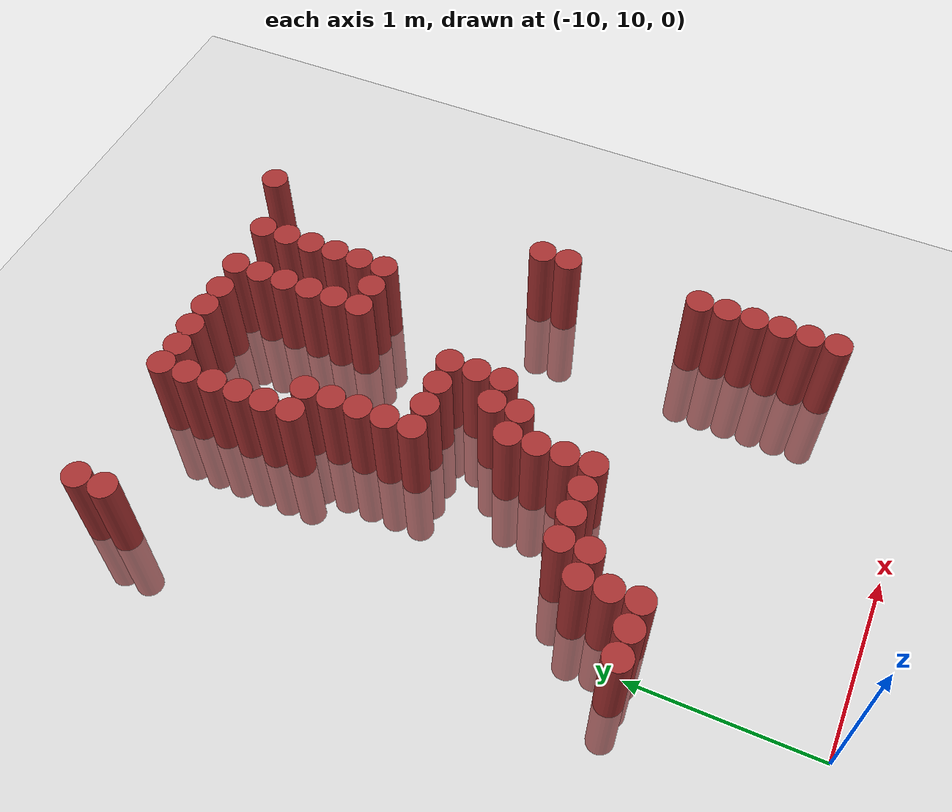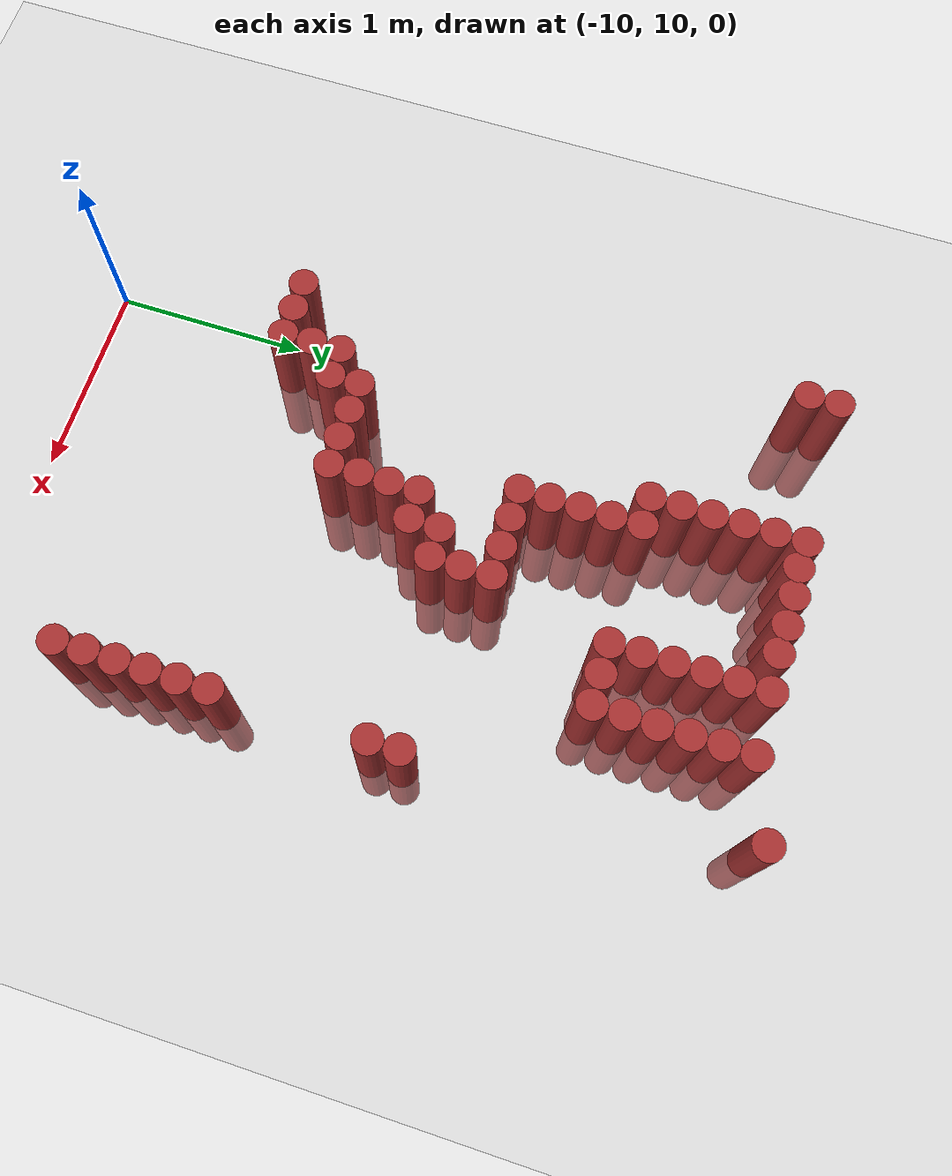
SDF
<sdf version="1.6">
 <world name="default">
  <model name="ground_plane">
   <static>1</static>
   <link name="link">
    <collision name="collision">
     <geometry><plane><normal>0 0 1</normal><size>100 100</size></plane></geometry>
     <surface><friction><ode><mu>100</mu><mu2>50</mu2></ode></friction></surface>
    </collision>
    <visual name="visual">
     <cast_shadows>0</cast_shadows>
     <geometry><plane><normal>0 0 1</normal><size>100 100</size></plane></geometry>
     <material>
      <script><uri>file://media/materials/scripts/gazebo.material</uri><name>Gazebo/Grey</name></script>
     </material>
    </visual>
   </link>
  </model>
  <model name="unit_cylinder_395">
   <static>1</static>
   <pose>-10.275 13.575 0 0 -0 0</pose>
   <link name="link">
    <inertial>
     <mass>1</mass>
     <inertia><ixx>0.145833</ixx><ixy>0</ixy><ixz>0</ixz><iyy>0.145833</iyy><iyz>0</iyz><izz>0.125</izz></inertia>
    </inertial>
    <collision name="collision">
     <geometry><cylinder><radius>0.075</radius><length>1</length></cylinder></geometry>
    </collision>
    <visual name="visual">
     <geometry><cylinder><radius>0.075</radius><length>1</length></cylinder></geometry>
     <material><ambient>0.648 0.192 0.192 1</ambient><diffuse>0.648 0.192 0.192 1</diffuse></material>
     <material>
      <script><name>Gazebo/Grey</name><uri>file://media/materials/scripts/gazebo.material</uri></script>
     </material>
    </visual>
   </link>
  </model>
  <model name="unit_cylinder_396">
   <static>1</static>
   <pose>-10.275 13.725 0 0 -0 0</pose>
   <link name="link">
    <inertial>
     <mass>1</mass>
     <inertia><ixx>0.145833</ixx><ixy>0</ixy><ixz>0</ixz><iyy>0.145833</iyy><iyz>0</iyz><izz>0.125</izz></inertia>
    </inertial>
    <collision name="collision">
     <geometry><cylinder><radius>0.075</radius><length>1</length></cylinder></geometry>
    </collision>
    <visual name="visual">
     <geometry><cylinder><radius>0.075</radius><length>1</length></cylinder></geometry>
     <material><ambient>0.648 0.192 0.192 1</ambient><diffuse>0.648 0.192 0.192 1</diffuse></material>
     <material>
      <script><name>Gazebo/Grey</name><uri>file://media/materials/scripts/gazebo.material</uri></script>
     </material>
    </visual>
   </link>
  </model>
  <model name="unit_cylinder_412">
   <static>1</static>
   <pose>-10.125 11.025 0 0 -0 0</pose>
   <link name="link">
    <inertial>
     <mass>1</mass>
     <inertia><ixx>0.145833</ixx><ixy>0</ixy><ixz>0</ixz><iyy>0.145833</iyy><iyz>0</iyz><izz>0.125</izz></inertia>
    </inertial>
    <collision name="collision">
     <geometry><cylinder><radius>0.075</radius><length>1</length></cylinder></geometry>
    </collision>
    <visual name="visual">
     <geometry><cylinder><radius>0.075</radius><length>1</length></cylinder></geometry>
     <material><ambient>0.648 0.192 0.192 1</ambient><diffuse>0.648 0.192 0.192 1</diffuse></material>
     <material>
      <script><name>Gazebo/Grey</name><uri>file://media/materials/scripts/gazebo.material</uri></script>
     </material>
    </visual>
   </link>
  </model>
  <model name="unit_cylinder_424">
   <static>1</static>
   <pose>-9.975 11.025 0 0 -0 0</pose>
   <link name="link">
    <inertial>
     <mass>1</mass>
     <inertia><ixx>0.145833</ixx><ixy>0</ixy><ixz>0</ixz><iyy>0.145833</iyy><iyz>0</iyz><izz>0.125</izz></inertia>
    </inertial>
    <collision name="collision">
     <geometry><cylinder><radius>0.075</radius><length>1</length></cylinder></geometry>
    </collision>
    <visual name="visual">
     <geometry><cylinder><radius>0.075</radius><length>1</length></cylinder></geometry>
     <material><ambient>0.648 0.192 0.192 1</ambient><diffuse>0.648 0.192 0.192 1</diffuse></material>
     <material>
      <script><name>Gazebo/Grey</name><uri>file://media/materials/scripts/gazebo.material</uri></script>
     </material>
    </visual>
   </link>
  </model>
  <model name="unit_cylinder_439">
   <static>1</static>
   <pose>-9.825 11.025 0 0 -0 0</pose>
   <link name="link">
    <inertial>
     <mass>1</mass>
     <inertia><ixx>0.145833</ixx><ixy>0</ixy><ixz>0</ixz><iyy>0.145833</iyy><iyz>0</iyz><izz>0.125</izz></inertia>
    </inertial>
    <collision name="collision">
     <geometry><cylinder><radius>0.075</radius><length>1</length></cylinder></geometry>
    </collision>
    <visual name="visual">
     <geometry><cylinder><radius>0.075</radius><length>1</length></cylinder></geometry>
     <material><ambient>0.648 0.192 0.192 1</ambient><diffuse>0.648 0.192 0.192 1</diffuse></material>
     <material>
      <script><name>Gazebo/Grey</name><uri>file://media/materials/scripts/gazebo.material</uri></script>
     </material>
    </visual>
   </link>
  </model>
  <model name="unit_cylinder_440">
   <static>1</static>
   <pose>-9.825 11.175 0 0 -0 0</pose>
   <link name="link">
    <inertial>
     <mass>1</mass>
     <inertia><ixx>0.145833</ixx><ixy>0</ixy><ixz>0</ixz><iyy>0.145833</iyy><iyz>0</iyz><izz>0.125</izz></inertia>
    </inertial>
    <collision name="collision">
     <geometry><cylinder><radius>0.075</radius><length>1</length></cylinder></geometry>
    </collision>
    <visual name="visual">
     <geometry><cylinder><radius>0.075</radius><length>1</length></cylinder></geometry>
     <material><ambient>0.648 0.192 0.192 1</ambient><diffuse>0.648 0.192 0.192 1</diffuse></material>
     <material>
      <script><name>Gazebo/Grey</name><uri>file://media/materials/scripts/gazebo.material</uri></script>
     </material>
    </visual>
   </link>
  </model>
  <model name="unit_cylinder_441">
   <static>1</static>
   <pose>-9.825 11.325 0 0 -0 0</pose>
   <link name="link">
    <inertial>
     <mass>1</mass>
     <inertia><ixx>0.145833</ixx><ixy>0</ixy><ixz>0</ixz><iyy>0.145833</iyy><iyz>0</iyz><izz>0.125</izz></inertia>
    </inertial>
    <collision name="collision">
     <geometry><cylinder><radius>0.075</radius><length>1</length></cylinder></geometry>
    </collision>
    <visual name="visual">
     <geometry><cylinder><radius>0.075</radius><length>1</length></cylinder></geometry>
     <material><ambient>0.648 0.192 0.192 1</ambient><diffuse>0.648 0.192 0.192 1</diffuse></material>
     <material>
      <script><name>Gazebo/Grey</name><uri>file://media/materials/scripts/gazebo.material</uri></script>
     </material>
    </visual>
   </link>
  </model>
  <model name="unit_cylinder_466">
   <static>1</static>
   <pose>-9.675 11.325 0 0 -0 0</pose>
   <link name="link">
    <inertial>
     <mass>1</mass>
     <inertia><ixx>0.145833</ixx><ixy>0</ixy><ixz>0</ixz><iyy>0.145833</iyy><iyz>0</iyz><izz>0.125</izz></inertia>
    </inertial>
    <collision name="collision">
     <geometry><cylinder><radius>0.075</radius><length>1</length></cylinder></geometry>
    </collision>
    <visual name="visual">
     <geometry><cylinder><radius>0.075</radius><length>1</length></cylinder></geometry>
     <material><ambient>0.648 0.192 0.192 1</ambient><diffuse>0.648 0.192 0.192 1</diffuse></material>
     <material>
      <script><name>Gazebo/Grey</name><uri>file://media/materials/scripts/gazebo.material</uri></script>
     </material>
    </visual>
   </link>
  </model>
  <model name="unit_cylinder_467">
   <static>1</static>
   <pose>-9.675 11.475 0 0 -0 0</pose>
   <link name="link">
    <inertial>
     <mass>1</mass>
     <inertia><ixx>0.145833</ixx><ixy>0</ixy><ixz>0</ixz><iyy>0.145833</iyy><iyz>0</iyz><izz>0.125</izz></inertia>
    </inertial>
    <collision name="collision">
     <geometry><cylinder><radius>0.075</radius><length>1</length></cylinder></geometry>
    </collision>
    <visual name="visual">
     <geometry><cylinder><radius>0.075</radius><length>1</length></cylinder></geometry>
     <material><ambient>0.648 0.192 0.192 1</ambient><diffuse>0.648 0.192 0.192 1</diffuse></material>
     <material>
      <script><name>Gazebo/Grey</name><uri>file://media/materials/scripts/gazebo.material</uri></script>
     </material>
    </visual>
   </link>
  </model>
  <model name="unit_cylinder_477">
   <static>1</static>
   <pose>-9.525 11.475 0 0 -0 0</pose>
   <link name="link">
    <inertial>
     <mass>1</mass>
     <inertia><ixx>0.145833</ixx><ixy>0</ixy><ixz>0</ixz><iyy>0.145833</iyy><iyz>0</iyz><izz>0.125</izz></inertia>
    </inertial>
    <collision name="collision">
     <geometry><cylinder><radius>0.075</radius><length>1</length></cylinder></geometry>
    </collision>
    <visual name="visual">
     <geometry><cylinder><radius>0.075</radius><length>1</length></cylinder></geometry>
     <material><ambient>0.648 0.192 0.192 1</ambient><diffuse>0.648 0.192 0.192 1</diffuse></material>
     <material>
      <script><name>Gazebo/Grey</name><uri>file://media/materials/scripts/gazebo.material</uri></script>
     </material>
    </visual>
   </link>
  </model>
  <model name="unit_cylinder_478">
   <static>1</static>
   <pose>-9.525 12.975 0 0 -0 0</pose>
   <link name="link">
    <inertial>
     <mass>1</mass>
     <inertia><ixx>0.145833</ixx><ixy>0</ixy><ixz>0</ixz><iyy>0.145833</iyy><iyz>0</iyz><izz>0.125</izz></inertia>
    </inertial>
    <collision name="collision">
     <geometry><cylinder><radius>0.075</radius><length>1</length></cylinder></geometry>
    </collision>
    <visual name="visual">
     <geometry><cylinder><radius>0.075</radius><length>1</length></cylinder></geometry>
     <material><ambient>0.648 0.192 0.192 1</ambient><diffuse>0.648 0.192 0.192 1</diffuse></material>
     <material>
      <script><name>Gazebo/Grey</name><uri>file://media/materials/scripts/gazebo.material</uri></script>
     </material>
    </visual>
   </link>
  </model>
  <model name="unit_cylinder_479">
   <static>1</static>
   <pose>-9.525 13.125 0 0 -0 0</pose>
   <link name="link">
    <inertial>
     <mass>1</mass>
     <inertia><ixx>0.145833</ixx><ixy>0</ixy><ixz>0</ixz><iyy>0.145833</iyy><iyz>0</iyz><izz>0.125</izz></inertia>
    </inertial>
    <collision name="collision">
     <geometry><cylinder><radius>0.075</radius><length>1</length></cylinder></geometry>
    </collision>
    <visual name="visual">
     <geometry><cylinder><radius>0.075</radius><length>1</length></cylinder></geometry>
     <material><ambient>0.648 0.192 0.192 1</ambient><diffuse>0.648 0.192 0.192 1</diffuse></material>
     <material>
      <script><name>Gazebo/Grey</name><uri>file://media/materials/scripts/gazebo.material</uri></script>
     </material>
    </visual>
   </link>
  </model>
  <model name="unit_cylinder_480">
   <static>1</static>
   <pose>-9.525 13.275 0 0 -0 0</pose>
   <link name="link">
    <inertial>
     <mass>1</mass>
     <inertia><ixx>0.145833</ixx><ixy>0</ixy><ixz>0</ixz><iyy>0.145833</iyy><iyz>0</iyz><izz>0.125</izz></inertia>
    </inertial>
    <collision name="collision">
     <geometry><cylinder><radius>0.075</radius><length>1</length></cylinder></geometry>
    </collision>
    <visual name="visual">
     <geometry><cylinder><radius>0.075</radius><length>1</length></cylinder></geometry>
     <material><ambient>0.648 0.192 0.192 1</ambient><diffuse>0.648 0.192 0.192 1</diffuse></material>
     <material>
      <script><name>Gazebo/Grey</name><uri>file://media/materials/scripts/gazebo.material</uri></script>
     </material>
    </visual>
   </link>
  </model>
  <model name="unit_cylinder_481">
   <static>1</static>
   <pose>-9.525 13.425 0 0 -0 0</pose>
   <link name="link">
    <inertial>
     <mass>1</mass>
     <inertia><ixx>0.145833</ixx><ixy>0</ixy><ixz>0</ixz><iyy>0.145833</iyy><iyz>0</iyz><izz>0.125</izz></inertia>
    </inertial>
    <collision name="collision">
     <geometry><cylinder><radius>0.075</radius><length>1</length></cylinder></geometry>
    </collision>
    <visual name="visual">
     <geometry><cylinder><radius>0.075</radius><length>1</length></cylinder></geometry>
     <material><ambient>0.648 0.192 0.192 1</ambient><diffuse>0.648 0.192 0.192 1</diffuse></material>
     <material>
      <script><name>Gazebo/Grey</name><uri>file://media/materials/scripts/gazebo.material</uri></script>
     </material>
    </visual>
   </link>
  </model>
  <model name="unit_cylinder_482">
   <static>1</static>
   <pose>-9.525 13.575 0 0 -0 0</pose>
   <link name="link">
    <inertial>
     <mass>1</mass>
     <inertia><ixx>0.145833</ixx><ixy>0</ixy><ixz>0</ixz><iyy>0.145833</iyy><iyz>0</iyz><izz>0.125</izz></inertia>
    </inertial>
    <collision name="collision">
     <geometry><cylinder><radius>0.075</radius><length>1</length></cylinder></geometry>
    </collision>
    <visual name="visual">
     <geometry><cylinder><radius>0.075</radius><length>1</length></cylinder></geometry>
     <material><ambient>0.648 0.192 0.192 1</ambient><diffuse>0.648 0.192 0.192 1</diffuse></material>
     <material>
      <script><name>Gazebo/Grey</name><uri>file://media/materials/scripts/gazebo.material</uri></script>
     </material>
    </visual>
   </link>
  </model>
  <model name="unit_cylinder_483">
   <static>1</static>
   <pose>-9.525 13.725 0 0 -0 0</pose>
   <link name="link">
    <inertial>
     <mass>1</mass>
     <inertia><ixx>0.145833</ixx><ixy>0</ixy><ixz>0</ixz><iyy>0.145833</iyy><iyz>0</iyz><izz>0.125</izz></inertia>
    </inertial>
    <collision name="collision">
     <geometry><cylinder><radius>0.075</radius><length>1</length></cylinder></geometry>
    </collision>
    <visual name="visual">
     <geometry><cylinder><radius>0.075</radius><length>1</length></cylinder></geometry>
     <material><ambient>0.648 0.192 0.192 1</ambient><diffuse>0.648 0.192 0.192 1</diffuse></material>
     <material>
      <script><name>Gazebo/Grey</name><uri>file://media/materials/scripts/gazebo.material</uri></script>
     </material>
    </visual>
   </link>
  </model>
  <model name="unit_cylinder_494">
   <static>1</static>
   <pose>-9.375 11.475 0 0 -0 0</pose>
   <link name="link">
    <inertial>
     <mass>1</mass>
     <inertia><ixx>0.145833</ixx><ixy>0</ixy><ixz>0</ixz><iyy>0.145833</iyy><iyz>0</iyz><izz>0.125</izz></inertia>
    </inertial>
    <collision name="collision">
     <geometry><cylinder><radius>0.075</radius><length>1</length></cylinder></geometry>
    </collision>
    <visual name="visual">
     <geometry><cylinder><radius>0.075</radius><length>1</length></cylinder></geometry>
     <material><ambient>0.648 0.192 0.192 1</ambient><diffuse>0.648 0.192 0.192 1</diffuse></material>
     <material>
      <script><name>Gazebo/Grey</name><uri>file://media/materials/scripts/gazebo.material</uri></script>
     </material>
    </visual>
   </link>
  </model>
  <model name="unit_cylinder_495">
   <static>1</static>
   <pose>-9.375 12.375 0 0 -0 0</pose>
   <link name="link">
    <inertial>
     <mass>1</mass>
     <inertia><ixx>0.145833</ixx><ixy>0</ixy><ixz>0</ixz><iyy>0.145833</iyy><iyz>0</iyz><izz>0.125</izz></inertia>
    </inertial>
    <collision name="collision">
     <geometry><cylinder><radius>0.075</radius><length>1</length></cylinder></geometry>
    </collision>
    <visual name="visual">
     <geometry><cylinder><radius>0.075</radius><length>1</length></cylinder></geometry>
     <material><ambient>0.648 0.192 0.192 1</ambient><diffuse>0.648 0.192 0.192 1</diffuse></material>
     <material>
      <script><name>Gazebo/Grey</name><uri>file://media/materials/scripts/gazebo.material</uri></script>
     </material>
    </visual>
   </link>
  </model>
  <model name="unit_cylinder_496">
   <static>1</static>
   <pose>-9.375 12.525 0 0 -0 0</pose>
   <link name="link">
    <inertial>
     <mass>1</mass>
     <inertia><ixx>0.145833</ixx><ixy>0</ixy><ixz>0</ixz><iyy>0.145833</iyy><iyz>0</iyz><izz>0.125</izz></inertia>
    </inertial>
    <collision name="collision">
     <geometry><cylinder><radius>0.075</radius><length>1</length></cylinder></geometry>
    </collision>
    <visual name="visual">
     <geometry><cylinder><radius>0.075</radius><length>1</length></cylinder></geometry>
     <material><ambient>0.648 0.192 0.192 1</ambient><diffuse>0.648 0.192 0.192 1</diffuse></material>
     <material>
      <script><name>Gazebo/Grey</name><uri>file://media/materials/scripts/gazebo.material</uri></script>
     </material>
    </visual>
   </link>
  </model>
  <model name="unit_cylinder_497">
   <static>1</static>
   <pose>-9.375 12.675 0 0 -0 0</pose>
   <link name="link">
    <inertial>
     <mass>1</mass>
     <inertia><ixx>0.145833</ixx><ixy>0</ixy><ixz>0</ixz><iyy>0.145833</iyy><iyz>0</iyz><izz>0.125</izz></inertia>
    </inertial>
    <collision name="collision">
     <geometry><cylinder><radius>0.075</radius><length>1</length></cylinder></geometry>
    </collision>
    <visual name="visual">
     <geometry><cylinder><radius>0.075</radius><length>1</length></cylinder></geometry>
     <material><ambient>0.648 0.192 0.192 1</ambient><diffuse>0.648 0.192 0.192 1</diffuse></material>
     <material>
      <script><name>Gazebo/Grey</name><uri>file://media/materials/scripts/gazebo.material</uri></script>
     </material>
    </visual>
   </link>
  </model>
  <model name="unit_cylinder_498">
   <static>1</static>
   <pose>-9.375 12.825 0 0 -0 0</pose>
   <link name="link">
    <inertial>
     <mass>1</mass>
     <inertia><ixx>0.145833</ixx><ixy>0</ixy><ixz>0</ixz><iyy>0.145833</iyy><iyz>0</iyz><izz>0.125</izz></inertia>
    </inertial>
    <collision name="collision">
     <geometry><cylinder><radius>0.075</radius><length>1</length></cylinder></geometry>
    </collision>
    <visual name="visual">
     <geometry><cylinder><radius>0.075</radius><length>1</length></cylinder></geometry>
     <material><ambient>0.648 0.192 0.192 1</ambient><diffuse>0.648 0.192 0.192 1</diffuse></material>
     <material>
      <script><name>Gazebo/Grey</name><uri>file://media/materials/scripts/gazebo.material</uri></script>
     </material>
    </visual>
   </link>
  </model>
  <model name="unit_cylinder_499">
   <static>1</static>
   <pose>-9.375 12.975 0 0 -0 0</pose>
   <link name="link">
    <inertial>
     <mass>1</mass>
     <inertia><ixx>0.145833</ixx><ixy>0</ixy><ixz>0</ixz><iyy>0.145833</iyy><iyz>0</iyz><izz>0.125</izz></inertia>
    </inertial>
    <collision name="collision">
     <geometry><cylinder><radius>0.075</radius><length>1</length></cylinder></geometry>
    </collision>
    <visual name="visual">
     <geometry><cylinder><radius>0.075</radius><length>1</length></cylinder></geometry>
     <material><ambient>0.648 0.192 0.192 1</ambient><diffuse>0.648 0.192 0.192 1</diffuse></material>
     <material>
      <script><name>Gazebo/Grey</name><uri>file://media/materials/scripts/gazebo.material</uri></script>
     </material>
    </visual>
   </link>
  </model>
  <model name="unit_cylinder_508">
   <static>1</static>
   <pose>-9.225 11.475 0 0 -0 0</pose>
   <link name="link">
    <inertial>
     <mass>1</mass>
     <inertia><ixx>0.145833</ixx><ixy>0</ixy><ixz>0</ixz><iyy>0.145833</iyy><iyz>0</iyz><izz>0.125</izz></inertia>
    </inertial>
    <collision name="collision">
     <geometry><cylinder><radius>0.075</radius><length>1</length></cylinder></geometry>
    </collision>
    <visual name="visual">
     <geometry><cylinder><radius>0.075</radius><length>1</length></cylinder></geometry>
     <material><ambient>0.648 0.192 0.192 1</ambient><diffuse>0.648 0.192 0.192 1</diffuse></material>
     <material>
      <script><name>Gazebo/Grey</name><uri>file://media/materials/scripts/gazebo.material</uri></script>
     </material>
    </visual>
   </link>
  </model>
  <model name="unit_cylinder_509">
   <static>1</static>
   <pose>-9.225 11.625 0 0 -0 0</pose>
   <link name="link">
    <inertial>
     <mass>1</mass>
     <inertia><ixx>0.145833</ixx><ixy>0</ixy><ixz>0</ixz><iyy>0.145833</iyy><iyz>0</iyz><izz>0.125</izz></inertia>
    </inertial>
    <collision name="collision">
     <geometry><cylinder><radius>0.075</radius><length>1</length></cylinder></geometry>
    </collision>
    <visual name="visual">
     <geometry><cylinder><radius>0.075</radius><length>1</length></cylinder></geometry>
     <material><ambient>0.648 0.192 0.192 1</ambient><diffuse>0.648 0.192 0.192 1</diffuse></material>
     <material>
      <script><name>Gazebo/Grey</name><uri>file://media/materials/scripts/gazebo.material</uri></script>
     </material>
    </visual>
   </link>
  </model>
  <model name="unit_cylinder_510">
   <static>1</static>
   <pose>-9.225 11.775 0 0 -0 0</pose>
   <link name="link">
    <inertial>
     <mass>1</mass>
     <inertia><ixx>0.145833</ixx><ixy>0</ixy><ixz>0</ixz><iyy>0.145833</iyy><iyz>0</iyz><izz>0.125</izz></inertia>
    </inertial>
    <collision name="collision">
     <geometry><cylinder><radius>0.075</radius><length>1</length></cylinder></geometry>
    </collision>
    <visual name="visual">
     <geometry><cylinder><radius>0.075</radius><length>1</length></cylinder></geometry>
     <material><ambient>0.648 0.192 0.192 1</ambient><diffuse>0.648 0.192 0.192 1</diffuse></material>
     <material>
      <script><name>Gazebo/Grey</name><uri>file://media/materials/scripts/gazebo.material</uri></script>
     </material>
    </visual>
   </link>
  </model>
  <model name="unit_cylinder_511">
   <static>1</static>
   <pose>-9.225 11.925 0 0 -0 0</pose>
   <link name="link">
    <inertial>
     <mass>1</mass>
     <inertia><ixx>0.145833</ixx><ixy>0</ixy><ixz>0</ixz><iyy>0.145833</iyy><iyz>0</iyz><izz>0.125</izz></inertia>
    </inertial>
    <collision name="collision">
     <geometry><cylinder><radius>0.075</radius><length>1</length></cylinder></geometry>
    </collision>
    <visual name="visual">
     <geometry><cylinder><radius>0.075</radius><length>1</length></cylinder></geometry>
     <material><ambient>0.648 0.192 0.192 1</ambient><diffuse>0.648 0.192 0.192 1</diffuse></material>
     <material>
      <script><name>Gazebo/Grey</name><uri>file://media/materials/scripts/gazebo.material</uri></script>
     </material>
    </visual>
   </link>
  </model>
  <model name="unit_cylinder_512">
   <static>1</static>
   <pose>-9.225 12.375 0 0 -0 0</pose>
   <link name="link">
    <inertial>
     <mass>1</mass>
     <inertia><ixx>0.145833</ixx><ixy>0</ixy><ixz>0</ixz><iyy>0.145833</iyy><iyz>0</iyz><izz>0.125</izz></inertia>
    </inertial>
    <collision name="collision">
     <geometry><cylinder><radius>0.075</radius><length>1</length></cylinder></geometry>
    </collision>
    <visual name="visual">
     <geometry><cylinder><radius>0.075</radius><length>1</length></cylinder></geometry>
     <material><ambient>0.648 0.192 0.192 1</ambient><diffuse>0.648 0.192 0.192 1</diffuse></material>
     <material>
      <script><name>Gazebo/Grey</name><uri>file://media/materials/scripts/gazebo.material</uri></script>
     </material>
    </visual>
   </link>
  </model>
  <model name="unit_cylinder_518">
   <static>1</static>
   <pose>-9.075 11.925 0 0 -0 0</pose>
   <link name="link">
    <inertial>
     <mass>1</mass>
     <inertia><ixx>0.145833</ixx><ixy>0</ixy><ixz>0</ixz><iyy>0.145833</iyy><iyz>0</iyz><izz>0.125</izz></inertia>
    </inertial>
    <collision name="collision">
     <geometry><cylinder><radius>0.075</radius><length>1</length></cylinder></geometry>
    </collision>
    <visual name="visual">
     <geometry><cylinder><radius>0.075</radius><length>1</length></cylinder></geometry>
     <material><ambient>0.648 0.192 0.192 1</ambient><diffuse>0.648 0.192 0.192 1</diffuse></material>
     <material>
      <script><name>Gazebo/Grey</name><uri>file://media/materials/scripts/gazebo.material</uri></script>
     </material>
    </visual>
   </link>
  </model>
  <model name="unit_cylinder_519">
   <static>1</static>
   <pose>-9.075 12.075 0 0 -0 0</pose>
   <link name="link">
    <inertial>
     <mass>1</mass>
     <inertia><ixx>0.145833</ixx><ixy>0</ixy><ixz>0</ixz><iyy>0.145833</iyy><iyz>0</iyz><izz>0.125</izz></inertia>
    </inertial>
    <collision name="collision">
     <geometry><cylinder><radius>0.075</radius><length>1</length></cylinder></geometry>
    </collision>
    <visual name="visual">
     <geometry><cylinder><radius>0.075</radius><length>1</length></cylinder></geometry>
     <material><ambient>0.648 0.192 0.192 1</ambient><diffuse>0.648 0.192 0.192 1</diffuse></material>
     <material>
      <script><name>Gazebo/Grey</name><uri>file://media/materials/scripts/gazebo.material</uri></script>
     </material>
    </visual>
   </link>
  </model>
  <model name="unit_cylinder_520">
   <static>1</static>
   <pose>-9.075 12.375 0 0 -0 0</pose>
   <link name="link">
    <inertial>
     <mass>1</mass>
     <inertia><ixx>0.145833</ixx><ixy>0</ixy><ixz>0</ixz><iyy>0.145833</iyy><iyz>0</iyz><izz>0.125</izz></inertia>
    </inertial>
    <collision name="collision">
     <geometry><cylinder><radius>0.075</radius><length>1</length></cylinder></geometry>
    </collision>
    <visual name="visual">
     <geometry><cylinder><radius>0.075</radius><length>1</length></cylinder></geometry>
     <material><ambient>0.648 0.192 0.192 1</ambient><diffuse>0.648 0.192 0.192 1</diffuse></material>
     <material>
      <script><name>Gazebo/Grey</name><uri>file://media/materials/scripts/gazebo.material</uri></script>
     </material>
    </visual>
   </link>
  </model>
  <model name="unit_cylinder_525">
   <static>1</static>
   <pose>-8.925 12.075 0 0 -0 0</pose>
   <link name="link">
    <inertial>
     <mass>1</mass>
     <inertia><ixx>0.145833</ixx><ixy>0</ixy><ixz>0</ixz><iyy>0.145833</iyy><iyz>0</iyz><izz>0.125</izz></inertia>
    </inertial>
    <collision name="collision">
     <geometry><cylinder><radius>0.075</radius><length>1</length></cylinder></geometry>
    </collision>
    <visual name="visual">
     <geometry><cylinder><radius>0.075</radius><length>1</length></cylinder></geometry>
     <material><ambient>0.648 0.192 0.192 1</ambient><diffuse>0.648 0.192 0.192 1</diffuse></material>
     <material>
      <script><name>Gazebo/Grey</name><uri>file://media/materials/scripts/gazebo.material</uri></script>
     </material>
    </visual>
   </link>
  </model>
  <model name="unit_cylinder_526">
   <static>1</static>
   <pose>-8.925 12.225 0 0 -0 0</pose>
   <link name="link">
    <inertial>
     <mass>1</mass>
     <inertia><ixx>0.145833</ixx><ixy>0</ixy><ixz>0</ixz><iyy>0.145833</iyy><iyz>0</iyz><izz>0.125</izz></inertia>
    </inertial>
    <collision name="collision">
     <geometry><cylinder><radius>0.075</radius><length>1</length></cylinder></geometry>
    </collision>
    <visual name="visual">
     <geometry><cylinder><radius>0.075</radius><length>1</length></cylinder></geometry>
     <material><ambient>0.648 0.192 0.192 1</ambient><diffuse>0.648 0.192 0.192 1</diffuse></material>
     <material>
      <script><name>Gazebo/Grey</name><uri>file://media/materials/scripts/gazebo.material</uri></script>
     </material>
    </visual>
   </link>
  </model>
  <model name="unit_cylinder_527">
   <static>1</static>
   <pose>-8.925 12.375 0 0 -0 0</pose>
   <link name="link">
    <inertial>
     <mass>1</mass>
     <inertia><ixx>0.145833</ixx><ixy>0</ixy><ixz>0</ixz><iyy>0.145833</iyy><iyz>0</iyz><izz>0.125</izz></inertia>
    </inertial>
    <collision name="collision">
     <geometry><cylinder><radius>0.075</radius><length>1</length></cylinder></geometry>
    </collision>
    <visual name="visual">
     <geometry><cylinder><radius>0.075</radius><length>1</length></cylinder></geometry>
     <material><ambient>0.648 0.192 0.192 1</ambient><diffuse>0.648 0.192 0.192 1</diffuse></material>
     <material>
      <script><name>Gazebo/Grey</name><uri>file://media/materials/scripts/gazebo.material</uri></script>
     </material>
    </visual>
   </link>
  </model>
  <model name="unit_cylinder_546">
   <static>1</static>
   <pose>-8.775 12.975 0 0 -0 0</pose>
   <link name="link">
    <inertial>
     <mass>1</mass>
     <inertia><ixx>0.145833</ixx><ixy>0</ixy><ixz>0</ixz><iyy>0.145833</iyy><iyz>0</iyz><izz>0.125</izz></inertia>
    </inertial>
    <collision name="collision">
     <geometry><cylinder><radius>0.075</radius><length>1</length></cylinder></geometry>
    </collision>
    <visual name="visual">
     <geometry><cylinder><radius>0.075</radius><length>1</length></cylinder></geometry>
     <material><ambient>0.648 0.192 0.192 1</ambient><diffuse>0.648 0.192 0.192 1</diffuse></material>
     <material>
      <script><name>Gazebo/Grey</name><uri>file://media/materials/scripts/gazebo.material</uri></script>
     </material>
    </visual>
   </link>
  </model>
  <model name="unit_cylinder_547">
   <static>1</static>
   <pose>-8.775 13.125 0 0 -0 0</pose>
   <link name="link">
    <inertial>
     <mass>1</mass>
     <inertia><ixx>0.145833</ixx><ixy>0</ixy><ixz>0</ixz><iyy>0.145833</iyy><iyz>0</iyz><izz>0.125</izz></inertia>
    </inertial>
    <collision name="collision">
     <geometry><cylinder><radius>0.075</radius><length>1</length></cylinder></geometry>
    </collision>
    <visual name="visual">
     <geometry><cylinder><radius>0.075</radius><length>1</length></cylinder></geometry>
     <material><ambient>0.648 0.192 0.192 1</ambient><diffuse>0.648 0.192 0.192 1</diffuse></material>
     <material>
      <script><name>Gazebo/Grey</name><uri>file://media/materials/scripts/gazebo.material</uri></script>
     </material>
    </visual>
   </link>
  </model>
  <model name="unit_cylinder_548">
   <static>1</static>
   <pose>-8.775 13.275 0 0 -0 0</pose>
   <link name="link">
    <inertial>
     <mass>1</mass>
     <inertia><ixx>0.145833</ixx><ixy>0</ixy><ixz>0</ixz><iyy>0.145833</iyy><iyz>0</iyz><izz>0.125</izz></inertia>
    </inertial>
    <collision name="collision">
     <geometry><cylinder><radius>0.075</radius><length>1</length></cylinder></geometry>
    </collision>
    <visual name="visual">
     <geometry><cylinder><radius>0.075</radius><length>1</length></cylinder></geometry>
     <material><ambient>0.648 0.192 0.192 1</ambient><diffuse>0.648 0.192 0.192 1</diffuse></material>
     <material>
      <script><name>Gazebo/Grey</name><uri>file://media/materials/scripts/gazebo.material</uri></script>
     </material>
    </visual>
   </link>
  </model>
  <model name="unit_cylinder_549">
   <static>1</static>
   <pose>-8.775 13.425 0 0 -0 0</pose>
   <link name="link">
    <inertial>
     <mass>1</mass>
     <inertia><ixx>0.145833</ixx><ixy>0</ixy><ixz>0</ixz><iyy>0.145833</iyy><iyz>0</iyz><izz>0.125</izz></inertia>
    </inertial>
    <collision name="collision">
     <geometry><cylinder><radius>0.075</radius><length>1</length></cylinder></geometry>
    </collision>
    <visual name="visual">
     <geometry><cylinder><radius>0.075</radius><length>1</length></cylinder></geometry>
     <material><ambient>0.648 0.192 0.192 1</ambient><diffuse>0.648 0.192 0.192 1</diffuse></material>
     <material>
      <script><name>Gazebo/Grey</name><uri>file://media/materials/scripts/gazebo.material</uri></script>
     </material>
    </visual>
   </link>
  </model>
  <model name="unit_cylinder_550">
   <static>1</static>
   <pose>-8.775 13.575 0 0 -0 0</pose>
   <link name="link">
    <inertial>
     <mass>1</mass>
     <inertia><ixx>0.145833</ixx><ixy>0</ixy><ixz>0</ixz><iyy>0.145833</iyy><iyz>0</iyz><izz>0.125</izz></inertia>
    </inertial>
    <collision name="collision">
     <geometry><cylinder><radius>0.075</radius><length>1</length></cylinder></geometry>
    </collision>
    <visual name="visual">
     <geometry><cylinder><radius>0.075</radius><length>1</length></cylinder></geometry>
     <material><ambient>0.648 0.192 0.192 1</ambient><diffuse>0.648 0.192 0.192 1</diffuse></material>
     <material>
      <script><name>Gazebo/Grey</name><uri>file://media/materials/scripts/gazebo.material</uri></script>
     </material>
    </visual>
   </link>
  </model>
  <model name="unit_cylinder_551">
   <static>1</static>
   <pose>-8.775 13.725 0 0 -0 0</pose>
   <link name="link">
    <inertial>
     <mass>1</mass>
     <inertia><ixx>0.145833</ixx><ixy>0</ixy><ixz>0</ixz><iyy>0.145833</iyy><iyz>0</iyz><izz>0.125</izz></inertia>
    </inertial>
    <collision name="collision">
     <geometry><cylinder><radius>0.075</radius><length>1</length></cylinder></geometry>
    </collision>
    <visual name="visual">
     <geometry><cylinder><radius>0.075</radius><length>1</length></cylinder></geometry>
     <material><ambient>0.648 0.192 0.192 1</ambient><diffuse>0.648 0.192 0.192 1</diffuse></material>
     <material>
      <script><name>Gazebo/Grey</name><uri>file://media/materials/scripts/gazebo.material</uri></script>
     </material>
    </visual>
   </link>
  </model>
  <model name="unit_cylinder_572">
   <static>1</static>
   <pose>-8.625 12.975 0 0 -0 0</pose>
   <link name="link">
    <inertial>
     <mass>1</mass>
     <inertia><ixx>0.145833</ixx><ixy>0</ixy><ixz>0</ixz><iyy>0.145833</iyy><iyz>0</iyz><izz>0.125</izz></inertia>
    </inertial>
    <collision name="collision">
     <geometry><cylinder><radius>0.075</radius><length>1</length></cylinder></geometry>
    </collision>
    <visual name="visual">
     <geometry><cylinder><radius>0.075</radius><length>1</length></cylinder></geometry>
     <material><ambient>0.648 0.192 0.192 1</ambient><diffuse>0.648 0.192 0.192 1</diffuse></material>
     <material>
      <script><name>Gazebo/Grey</name><uri>file://media/materials/scripts/gazebo.material</uri></script>
     </material>
    </visual>
   </link>
  </model>
  <model name="unit_cylinder_583">
   <static>1</static>
   <pose>-8.475 12.975 0 0 -0 0</pose>
   <link name="link">
    <inertial>
     <mass>1</mass>
     <inertia><ixx>0.145833</ixx><ixy>0</ixy><ixz>0</ixz><iyy>0.145833</iyy><iyz>0</iyz><izz>0.125</izz></inertia>
    </inertial>
    <collision name="collision">
     <geometry><cylinder><radius>0.075</radius><length>1</length></cylinder></geometry>
    </collision>
    <visual name="visual">
     <geometry><cylinder><radius>0.075</radius><length>1</length></cylinder></geometry>
     <material><ambient>0.648 0.192 0.192 1</ambient><diffuse>0.648 0.192 0.192 1</diffuse></material>
     <material>
      <script><name>Gazebo/Grey</name><uri>file://media/materials/scripts/gazebo.material</uri></script>
     </material>
    </visual>
   </link>
  </model>
  <model name="unit_cylinder_584">
   <static>1</static>
   <pose>-8.475 13.125 0 0 -0 0</pose>
   <link name="link">
    <inertial>
     <mass>1</mass>
     <inertia><ixx>0.145833</ixx><ixy>0</ixy><ixz>0</ixz><iyy>0.145833</iyy><iyz>0</iyz><izz>0.125</izz></inertia>
    </inertial>
    <collision name="collision">
     <geometry><cylinder><radius>0.075</radius><length>1</length></cylinder></geometry>
    </collision>
    <visual name="visual">
     <geometry><cylinder><radius>0.075</radius><length>1</length></cylinder></geometry>
     <material><ambient>0.648 0.192 0.192 1</ambient><diffuse>0.648 0.192 0.192 1</diffuse></material>
     <material>
      <script><name>Gazebo/Grey</name><uri>file://media/materials/scripts/gazebo.material</uri></script>
     </material>
    </visual>
   </link>
  </model>
  <model name="unit_cylinder_585">
   <static>1</static>
   <pose>-8.475 13.275 0 0 -0 0</pose>
   <link name="link">
    <inertial>
     <mass>1</mass>
     <inertia><ixx>0.145833</ixx><ixy>0</ixy><ixz>0</ixz><iyy>0.145833</iyy><iyz>0</iyz><izz>0.125</izz></inertia>
    </inertial>
    <collision name="collision">
     <geometry><cylinder><radius>0.075</radius><length>1</length></cylinder></geometry>
    </collision>
    <visual name="visual">
     <geometry><cylinder><radius>0.075</radius><length>1</length></cylinder></geometry>
     <material><ambient>0.648 0.192 0.192 1</ambient><diffuse>0.648 0.192 0.192 1</diffuse></material>
     <material>
      <script><name>Gazebo/Grey</name><uri>file://media/materials/scripts/gazebo.material</uri></script>
     </material>
    </visual>
   </link>
  </model>
  <model name="unit_cylinder_586">
   <static>1</static>
   <pose>-8.475 13.425 0 0 -0 0</pose>
   <link name="link">
    <inertial>
     <mass>1</mass>
     <inertia><ixx>0.145833</ixx><ixy>0</ixy><ixz>0</ixz><iyy>0.145833</iyy><iyz>0</iyz><izz>0.125</izz></inertia>
    </inertial>
    <collision name="collision">
     <geometry><cylinder><radius>0.075</radius><length>1</length></cylinder></geometry>
    </collision>
    <visual name="visual">
     <geometry><cylinder><radius>0.075</radius><length>1</length></cylinder></geometry>
     <material><ambient>0.648 0.192 0.192 1</ambient><diffuse>0.648 0.192 0.192 1</diffuse></material>
     <material>
      <script><name>Gazebo/Grey</name><uri>file://media/materials/scripts/gazebo.material</uri></script>
     </material>
    </visual>
   </link>
  </model>
  <model name="unit_cylinder_587">
   <static>1</static>
   <pose>-8.475 13.575 0 0 -0 0</pose>
   <link name="link">
    <inertial>
     <mass>1</mass>
     <inertia><ixx>0.145833</ixx><ixy>0</ixy><ixz>0</ixz><iyy>0.145833</iyy><iyz>0</iyz><izz>0.125</izz></inertia>
    </inertial>
    <collision name="collision">
     <geometry><cylinder><radius>0.075</radius><length>1</length></cylinder></geometry>
    </collision>
    <visual name="visual">
     <geometry><cylinder><radius>0.075</radius><length>1</length></cylinder></geometry>
     <material><ambient>0.648 0.192 0.192 1</ambient><diffuse>0.648 0.192 0.192 1</diffuse></material>
     <material>
      <script><name>Gazebo/Grey</name><uri>file://media/materials/scripts/gazebo.material</uri></script>
     </material>
    </visual>
   </link>
  </model>
  <model name="unit_cylinder_588">
   <static>1</static>
   <pose>-8.475 13.725 0 0 -0 0</pose>
   <link name="link">
    <inertial>
     <mass>1</mass>
     <inertia><ixx>0.145833</ixx><ixy>0</ixy><ixz>0</ixz><iyy>0.145833</iyy><iyz>0</iyz><izz>0.125</izz></inertia>
    </inertial>
    <collision name="collision">
     <geometry><cylinder><radius>0.075</radius><length>1</length></cylinder></geometry>
    </collision>
    <visual name="visual">
     <geometry><cylinder><radius>0.075</radius><length>1</length></cylinder></geometry>
     <material><ambient>0.648 0.192 0.192 1</ambient><diffuse>0.648 0.192 0.192 1</diffuse></material>
     <material>
      <script><name>Gazebo/Grey</name><uri>file://media/materials/scripts/gazebo.material</uri></script>
     </material>
    </visual>
   </link>
  </model>
  <model name="unit_cylinder_639">
   <static>1</static>
   <pose>-8.025 10.575 0 0 -0 0</pose>
   <link name="link">
    <inertial>
     <mass>1</mass>
     <inertia><ixx>0.145833</ixx><ixy>0</ixy><ixz>0</ixz><iyy>0.145833</iyy><iyz>0</iyz><izz>0.125</izz></inertia>
    </inertial>
    <collision name="collision">
     <geometry><cylinder><radius>0.075</radius><length>1</length></cylinder></geometry>
    </collision>
    <visual name="visual">
     <geometry><cylinder><radius>0.075</radius><length>1</length></cylinder></geometry>
     <material><ambient>0.648 0.192 0.192 1</ambient><diffuse>0.648 0.192 0.192 1</diffuse></material>
     <material>
      <script><name>Gazebo/Grey</name><uri>file://media/materials/scripts/gazebo.material</uri></script>
     </material>
    </visual>
   </link>
  </model>
  <model name="unit_cylinder_640">
   <static>1</static>
   <pose>-8.025 10.725 0 0 -0 0</pose>
   <link name="link">
    <inertial>
     <mass>1</mass>
     <inertia><ixx>0.145833</ixx><ixy>0</ixy><ixz>0</ixz><iyy>0.145833</iyy><iyz>0</iyz><izz>0.125</izz></inertia>
    </inertial>
    <collision name="collision">
     <geometry><cylinder><radius>0.075</radius><length>1</length></cylinder></geometry>
    </collision>
    <visual name="visual">
     <geometry><cylinder><radius>0.075</radius><length>1</length></cylinder></geometry>
     <material><ambient>0.648 0.192 0.192 1</ambient><diffuse>0.648 0.192 0.192 1</diffuse></material>
     <material>
      <script><name>Gazebo/Grey</name><uri>file://media/materials/scripts/gazebo.material</uri></script>
     </material>
    </visual>
   </link>
  </model>
  <model name="unit_cylinder_641">
   <static>1</static>
   <pose>-8.025 10.875 0 0 -0 0</pose>
   <link name="link">
    <inertial>
     <mass>1</mass>
     <inertia><ixx>0.145833</ixx><ixy>0</ixy><ixz>0</ixz><iyy>0.145833</iyy><iyz>0</iyz><izz>0.125</izz></inertia>
    </inertial>
    <collision name="collision">
     <geometry><cylinder><radius>0.075</radius><length>1</length></cylinder></geometry>
    </collision>
    <visual name="visual">
     <geometry><cylinder><radius>0.075</radius><length>1</length></cylinder></geometry>
     <material><ambient>0.648 0.192 0.192 1</ambient><diffuse>0.648 0.192 0.192 1</diffuse></material>
     <material>
      <script><name>Gazebo/Grey</name><uri>file://media/materials/scripts/gazebo.material</uri></script>
     </material>
    </visual>
   </link>
  </model>
  <model name="unit_cylinder_642">
   <static>1</static>
   <pose>-8.025 11.025 0 0 -0 0</pose>
   <link name="link">
    <inertial>
     <mass>1</mass>
     <inertia><ixx>0.145833</ixx><ixy>0</ixy><ixz>0</ixz><iyy>0.145833</iyy><iyz>0</iyz><izz>0.125</izz></inertia>
    </inertial>
    <collision name="collision">
     <geometry><cylinder><radius>0.075</radius><length>1</length></cylinder></geometry>
    </collision>
    <visual name="visual">
     <geometry><cylinder><radius>0.075</radius><length>1</length></cylinder></geometry>
     <material><ambient>0.648 0.192 0.192 1</ambient><diffuse>0.648 0.192 0.192 1</diffuse></material>
     <material>
      <script><name>Gazebo/Grey</name><uri>file://media/materials/scripts/gazebo.material</uri></script>
     </material>
    </visual>
   </link>
  </model>
  <model name="unit_cylinder_643">
   <static>1</static>
   <pose>-8.025 11.175 0 0 -0 0</pose>
   <link name="link">
    <inertial>
     <mass>1</mass>
     <inertia><ixx>0.145833</ixx><ixy>0</ixy><ixz>0</ixz><iyy>0.145833</iyy><iyz>0</iyz><izz>0.125</izz></inertia>
    </inertial>
    <collision name="collision">
     <geometry><cylinder><radius>0.075</radius><length>1</length></cylinder></geometry>
    </collision>
    <visual name="visual">
     <geometry><cylinder><radius>0.075</radius><length>1</length></cylinder></geometry>
     <material><ambient>0.648 0.192 0.192 1</ambient><diffuse>0.648 0.192 0.192 1</diffuse></material>
     <material>
      <script><name>Gazebo/Grey</name><uri>file://media/materials/scripts/gazebo.material</uri></script>
     </material>
    </visual>
   </link>
  </model>
  <model name="unit_cylinder_644">
   <static>1</static>
   <pose>-8.025 11.325 0 0 -0 0</pose>
   <link name="link">
    <inertial>
     <mass>1</mass>
     <inertia><ixx>0.145833</ixx><ixy>0</ixy><ixz>0</ixz><iyy>0.145833</iyy><iyz>0</iyz><izz>0.125</izz></inertia>
    </inertial>
    <collision name="collision">
     <geometry><cylinder><radius>0.075</radius><length>1</length></cylinder></geometry>
    </collision>
    <visual name="visual">
     <geometry><cylinder><radius>0.075</radius><length>1</length></cylinder></geometry>
     <material><ambient>0.648 0.192 0.192 1</ambient><diffuse>0.648 0.192 0.192 1</diffuse></material>
     <material>
      <script><name>Gazebo/Grey</name><uri>file://media/materials/scripts/gazebo.material</uri></script>
     </material>
    </visual>
   </link>
  </model>
  <model name="unit_cylinder_645">
   <static>1</static>
   <pose>-8.025 12.075 0 0 -0 0</pose>
   <link name="link">
    <inertial>
     <mass>1</mass>
     <inertia><ixx>0.145833</ixx><ixy>0</ixy><ixz>0</ixz><iyy>0.145833</iyy><iyz>0</iyz><izz>0.125</izz></inertia>
    </inertial>
    <collision name="collision">
     <geometry><cylinder><radius>0.075</radius><length>1</length></cylinder></geometry>
    </collision>
    <visual name="visual">
     <geometry><cylinder><radius>0.075</radius><length>1</length></cylinder></geometry>
     <material><ambient>0.648 0.192 0.192 1</ambient><diffuse>0.648 0.192 0.192 1</diffuse></material>
     <material>
      <script><name>Gazebo/Grey</name><uri>file://media/materials/scripts/gazebo.material</uri></script>
     </material>
    </visual>
   </link>
  </model>
  <model name="unit_cylinder_646">
   <static>1</static>
   <pose>-8.025 12.225 0 0 -0 0</pose>
   <link name="link">
    <inertial>
     <mass>1</mass>
     <inertia><ixx>0.145833</ixx><ixy>0</ixy><ixz>0</ixz><iyy>0.145833</iyy><iyz>0</iyz><izz>0.125</izz></inertia>
    </inertial>
    <collision name="collision">
     <geometry><cylinder><radius>0.075</radius><length>1</length></cylinder></geometry>
    </collision>
    <visual name="visual">
     <geometry><cylinder><radius>0.075</radius><length>1</length></cylinder></geometry>
     <material><ambient>0.648 0.192 0.192 1</ambient><diffuse>0.648 0.192 0.192 1</diffuse></material>
     <material>
      <script><name>Gazebo/Grey</name><uri>file://media/materials/scripts/gazebo.material</uri></script>
     </material>
    </visual>
   </link>
  </model>
  <model name="unit_cylinder_589_clone_0">
   <static>1</static>
   <pose>-8.11022 13.8571 0 0 -0 0</pose>
   <link name="link">
    <inertial>
     <mass>1</mass>
     <inertia><ixx>0.145833</ixx><ixy>0</ixy><ixz>0</ixz><iyy>0.145833</iyy><iyz>0</iyz><izz>0.125</izz></inertia>
    </inertial>
    <collision name="collision">
     <geometry><cylinder><radius>0.075</radius><length>1</length></cylinder></geometry>
    </collision>
    <visual name="visual">
     <geometry><cylinder><radius>0.075</radius><length>1</length></cylinder></geometry>
     <material><ambient>0.648 0.192 0.192 1</ambient><diffuse>0.648 0.192 0.192 1</diffuse></material>
     <material>
      <script><name>Gazebo/Grey</name><uri>file://media/materials/scripts/gazebo.material</uri></script>
     </material>
    </visual>
   </link>
  </model>
  <model name="unit_cylinder_483_clone">
   <static>1</static>
   <pose>-9.38849 13.7143 0 0 -0 0</pose>
   <link name="link">
    <inertial>
     <mass>1</mass>
     <inertia><ixx>0.145833</ixx><ixy>0</ixy><ixz>0</ixz><iyy>0.145833</iyy><iyz>0</iyz><izz>0.125</izz></inertia>
    </inertial>
    <collision name="collision">
     <geometry><cylinder><radius>0.075</radius><length>1</length></cylinder></geometry>
    </collision>
    <visual name="visual">
     <geometry><cylinder><radius>0.075</radius><length>1</length></cylinder></geometry>
     <material><ambient>0.648 0.192 0.192 1</ambient><diffuse>0.648 0.192 0.192 1</diffuse></material>
     <material>
      <script><name>Gazebo/Grey</name><uri>file://media/materials/scripts/gazebo.material</uri></script>
     </material>
    </visual>
   </link>
  </model>
  <model name="unit_cylinder_483_clone_0">
   <static>1</static>
   <pose>-9.24856 13.7231 0 0 -0 0</pose>
   <link name="link">
    <inertial>
     <mass>1</mass>
     <inertia><ixx>0.145833</ixx><ixy>0</ixy><ixz>0</ixz><iyy>0.145833</iyy><iyz>0</iyz><izz>0.125</izz></inertia>
    </inertial>
    <collision name="collision">
     <geometry><cylinder><radius>0.075</radius><length>1</length></cylinder></geometry>
    </collision>
    <visual name="visual">
     <geometry><cylinder><radius>0.075</radius><length>1</length></cylinder></geometry>
     <material><ambient>0.648 0.192 0.192 1</ambient><diffuse>0.648 0.192 0.192 1</diffuse></material>
     <material>
      <script><name>Gazebo/Grey</name><uri>file://media/materials/scripts/gazebo.material</uri></script>
     </material>
    </visual>
   </link>
  </model>
  <model name="unit_cylinder_483_clone_1">
   <static>1</static>
   <pose>-9.09953 13.7242 0 0 -0 0</pose>
   <link name="link">
    <inertial>
     <mass>1</mass>
     <inertia><ixx>0.145833</ixx><ixy>0</ixy><ixz>0</ixz><iyy>0.145833</iyy><iyz>0</iyz><izz>0.125</izz></inertia>
    </inertial>
    <collision name="collision">
     <geometry><cylinder><radius>0.075</radius><length>1</length></cylinder></geometry>
    </collision>
    <visual name="visual">
     <geometry><cylinder><radius>0.075</radius><length>1</length></cylinder></geometry>
     <material><ambient>0.648 0.192 0.192 1</ambient><diffuse>0.648 0.192 0.192 1</diffuse></material>
     <material>
      <script><name>Gazebo/Grey</name><uri>file://media/materials/scripts/gazebo.material</uri></script>
     </material>
    </visual>
   </link>
  </model>
  <model name="unit_cylinder_483_clone_2">
   <static>1</static>
   <pose>-8.95885 13.7156 0 0 -0 0</pose>
   <link name="link">
    <inertial>
     <mass>1</mass>
     <inertia><ixx>0.145833</ixx><ixy>0</ixy><ixz>0</ixz><iyy>0.145833</iyy><iyz>0</iyz><izz>0.125</izz></inertia>
    </inertial>
    <collision name="collision">
     <geometry><cylinder><radius>0.075</radius><length>1</length></cylinder></geometry>
    </collision>
    <visual name="visual">
     <geometry><cylinder><radius>0.075</radius><length>1</length></cylinder></geometry>
     <material><ambient>0.648 0.192 0.192 1</ambient><diffuse>0.648 0.192 0.192 1</diffuse></material>
     <material>
      <script><name>Gazebo/Grey</name><uri>file://media/materials/scripts/gazebo.material</uri></script>
     </material>
    </visual>
   </link>
  </model>
 </world>
</sdf>
